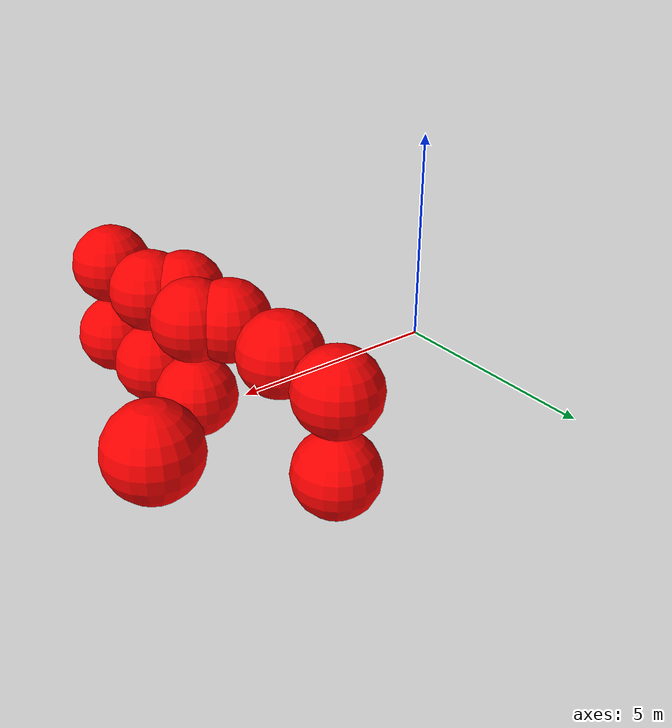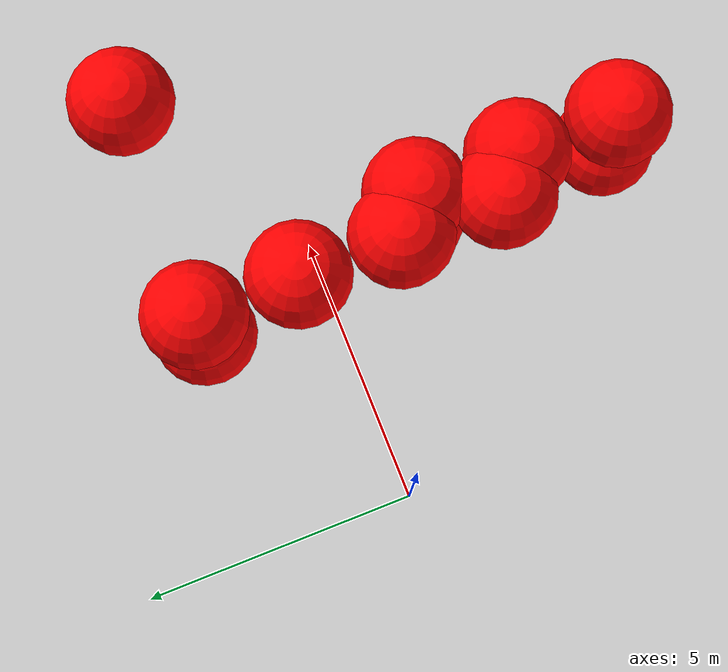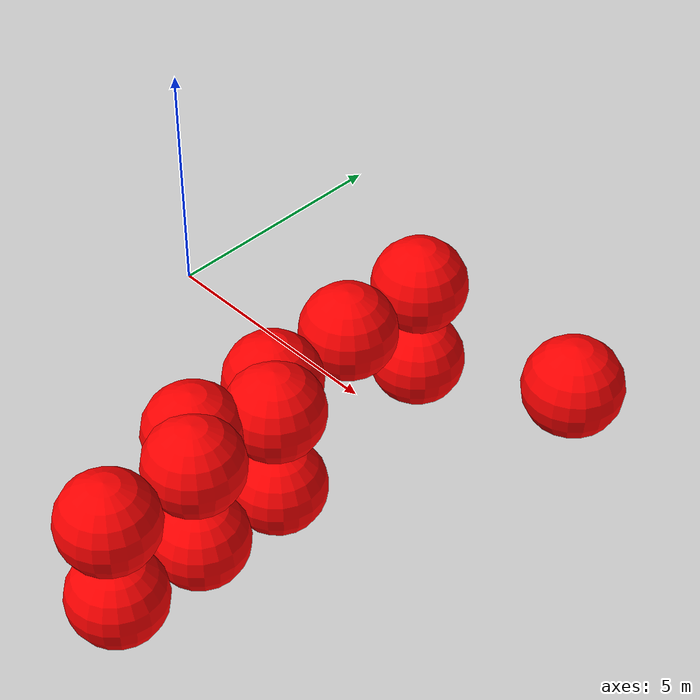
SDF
<sdf version="1.8">
 <world name="3d_world">
  <model name="obstacle_1" canonical_link="obstacle">
   <static>true</static>
   <pose relative_to="world">5.01 -6.12 -1.00 0 0 0</pose>
   <link name="obstacle">
    <pose relative_to="__model__">0.0 0 0.0 0 0 0</pose>
    <visual name="visual">
     <geometry><sphere><radius>1.00</radius></sphere></geometry>
     <material>
      <ambient>1.0 0.0 0.0 1</ambient>
      <diffuse>1.0 0.0 0.0 1</diffuse>
      <specular>1.0 0.0 0.0 1</specular>
     </material>
    </visual>
    <collision name="collision"><geometry><sphere><radius>1.00</radius></sphere></geometry></collision>
    <enable_gravity>false</enable_gravity>
   </link>
   <plugin filename="ignition-gazebo-velocity-control-system" name="ignition::gazebo::systems::VelocityControl">
    <initial_linear>0.00 0.00 0.00</initial_linear>
    <initial_angular>0 0 0</initial_angular>
   </plugin>
   <plugin filename="ignition-gazebo-odometry-publisher-system" name="ignition::gazebo::systems::OdometryPublisher">
    <dimensions>3</dimensions>
   </plugin>
  </model>
  <model name="obstacle_2" canonical_link="obstacle">
   <static>true</static>
   <pose relative_to="world">5.01 -4.12 -1.00 0 0 0</pose>
   <link name="obstacle">
    <pose relative_to="__model__">0.0 0 0.0 0 0 0</pose>
    <visual name="visual">
     <geometry><sphere><radius>1.00</radius></sphere></geometry>
     <material>
      <ambient>1.0 0.0 0.0 1</ambient>
      <diffuse>1.0 0.0 0.0 1</diffuse>
      <specular>1.0 0.0 0.0 1</specular>
     </material>
    </visual>
    <collision name="collision"><geometry><sphere><radius>1.00</radius></sphere></geometry></collision>
    <enable_gravity>false</enable_gravity>
   </link>
   <plugin filename="ignition-gazebo-velocity-control-system" name="ignition::gazebo::systems::VelocityControl">
    <initial_linear>0.00 0.00 0.00</initial_linear>
    <initial_angular>0 0 0</initial_angular>
   </plugin>
   <plugin filename="ignition-gazebo-odometry-publisher-system" name="ignition::gazebo::systems::OdometryPublisher">
    <dimensions>3</dimensions>
   </plugin>
  </model>
  <model name="obstacle_3" canonical_link="obstacle">
   <static>true</static>
   <pose relative_to="world">5.01 -2.12 -1.00 0 0 0</pose>
   <link name="obstacle">
    <pose relative_to="__model__">0.0 0 0.0 0 0 0</pose>
    <visual name="visual">
     <geometry><sphere><radius>1.00</radius></sphere></geometry>
     <material>
      <ambient>1.0 0.0 0.0 1</ambient>
      <diffuse>1.0 0.0 0.0 1</diffuse>
      <specular>1.0 0.0 0.0 1</specular>
     </material>
    </visual>
    <collision name="collision"><geometry><sphere><radius>1.00</radius></sphere></geometry></collision>
    <enable_gravity>false</enable_gravity>
   </link>
   <plugin filename="ignition-gazebo-velocity-control-system" name="ignition::gazebo::systems::VelocityControl">
    <initial_linear>0.00 0.00 0.00</initial_linear>
    <initial_angular>0 0 0</initial_angular>
   </plugin>
   <plugin filename="ignition-gazebo-odometry-publisher-system" name="ignition::gazebo::systems::OdometryPublisher">
    <dimensions>3</dimensions>
   </plugin>
  </model>
  <model name="obstacle_4" canonical_link="obstacle">
   <static>true</static>
   <pose relative_to="world">5.01 -6.12 1.00 0 0 0</pose>
   <link name="obstacle">
    <pose relative_to="__model__">0.0 0 0.0 0 0 0</pose>
    <visual name="visual">
     <geometry><sphere><radius>1.00</radius></sphere></geometry>
     <material>
      <ambient>1.0 0.0 0.0 1</ambient>
      <diffuse>1.0 0.0 0.0 1</diffuse>
      <specular>1.0 0.0 0.0 1</specular>
     </material>
    </visual>
    <collision name="collision"><geometry><sphere><radius>1.00</radius></sphere></geometry></collision>
    <enable_gravity>false</enable_gravity>
   </link>
   <plugin filename="ignition-gazebo-velocity-control-system" name="ignition::gazebo::systems::VelocityControl">
    <initial_linear>0.00 0.00 0.00</initial_linear>
    <initial_angular>0 0 0</initial_angular>
   </plugin>
   <plugin filename="ignition-gazebo-odometry-publisher-system" name="ignition::gazebo::systems::OdometryPublisher">
    <dimensions>3</dimensions>
   </plugin>
  </model>
  <model name="obstacle_5" canonical_link="obstacle">
   <static>true</static>
   <pose relative_to="world">5.01 -4.12 1.00 0 0 0</pose>
   <link name="obstacle">
    <pose relative_to="__model__">0.0 0 0.0 0 0 0</pose>
    <visual name="visual">
     <geometry><sphere><radius>1.00</radius></sphere></geometry>
     <material>
      <ambient>1.0 0.0 0.0 1</ambient>
      <diffuse>1.0 0.0 0.0 1</diffuse>
      <specular>1.0 0.0 0.0 1</specular>
     </material>
    </visual>
    <collision name="collision"><geometry><sphere><radius>1.00</radius></sphere></geometry></collision>
    <enable_gravity>false</enable_gravity>
   </link>
   <plugin filename="ignition-gazebo-velocity-control-system" name="ignition::gazebo::systems::VelocityControl">
    <initial_linear>0.00 0.00 0.00</initial_linear>
    <initial_angular>0 0 0</initial_angular>
   </plugin>
   <plugin filename="ignition-gazebo-odometry-publisher-system" name="ignition::gazebo::systems::OdometryPublisher">
    <dimensions>3</dimensions>
   </plugin>
  </model>
  <model name="obstacle_6" canonical_link="obstacle">
   <static>true</static>
   <pose relative_to="world">5.01 -2.12 1.00 0 0 0</pose>
   <link name="obstacle">
    <pose relative_to="__model__">0.0 0 0.0 0 0 0</pose>
    <visual name="visual">
     <geometry><sphere><radius>1.00</radius></sphere></geometry>
     <material>
      <ambient>1.0 0.0 0.0 1</ambient>
      <diffuse>1.0 0.0 0.0 1</diffuse>
      <specular>1.0 0.0 0.0 1</specular>
     </material>
    </visual>
    <collision name="collision"><geometry><sphere><radius>1.00</radius></sphere></geometry></collision>
    <enable_gravity>false</enable_gravity>
   </link>
   <plugin filename="ignition-gazebo-velocity-control-system" name="ignition::gazebo::systems::VelocityControl">
    <initial_linear>0.00 0.00 0.00</initial_linear>
    <initial_angular>0 0 0</initial_angular>
   </plugin>
   <plugin filename="ignition-gazebo-odometry-publisher-system" name="ignition::gazebo::systems::OdometryPublisher">
    <dimensions>3</dimensions>
   </plugin>
  </model>
  <model name="obstacle_16" canonical_link="obstacle">
   <static>true</static>
   <pose relative_to="world">4.36 2.42 -1.00 0 0 0</pose>
   <link name="obstacle">
    <pose relative_to="__model__">0.0 0 0.0 0 0 0</pose>
    <visual name="visual">
     <geometry><sphere><radius>1.00</radius></sphere></geometry>
     <material>
      <ambient>1.0 0.0 0.0 1</ambient>
      <diffuse>1.0 0.0 0.0 1</diffuse>
      <specular>1.0 0.0 0.0 1</specular>
     </material>
    </visual>
    <collision name="collision"><geometry><sphere><radius>1.00</radius></sphere></geometry></collision>
    <enable_gravity>false</enable_gravity>
   </link>
   <plugin filename="ignition-gazebo-velocity-control-system" name="ignition::gazebo::systems::VelocityControl">
    <initial_linear>0.00 0.00 0.00</initial_linear>
    <initial_angular>0 0 0</initial_angular>
   </plugin>
   <plugin filename="ignition-gazebo-odometry-publisher-system" name="ignition::gazebo::systems::OdometryPublisher">
    <dimensions>3</dimensions>
   </plugin>
  </model>
  <model name="obstacle_17" canonical_link="obstacle">
   <static>true</static>
   <pose relative_to="world">4.36 -3.58 1.00 0 0 0</pose>
   <link name="obstacle">
    <pose relative_to="__model__">0.0 0 0.0 0 0 0</pose>
    <visual name="visual">
     <geometry><sphere><radius>1.00</radius></sphere></geometry>
     <material>
      <ambient>1.0 0.0 0.0 1</ambient>
      <diffuse>1.0 0.0 0.0 1</diffuse>
      <specular>1.0 0.0 0.0 1</specular>
     </material>
    </visual>
    <collision name="collision"><geometry><sphere><radius>1.00</radius></sphere></geometry></collision>
    <enable_gravity>false</enable_gravity>
   </link>
   <plugin filename="ignition-gazebo-velocity-control-system" name="ignition::gazebo::systems::VelocityControl">
    <initial_linear>0.00 0.00 0.00</initial_linear>
    <initial_angular>0 0 0</initial_angular>
   </plugin>
   <plugin filename="ignition-gazebo-odometry-publisher-system" name="ignition::gazebo::systems::OdometryPublisher">
    <dimensions>3</dimensions>
   </plugin>
  </model>
  <model name="obstacle_18" canonical_link="obstacle">
   <static>true</static>
   <pose relative_to="world">4.36 -1.58 1.00 0 0 0</pose>
   <link name="obstacle">
    <pose relative_to="__model__">0.0 0 0.0 0 0 0</pose>
    <visual name="visual">
     <geometry><sphere><radius>1.00</radius></sphere></geometry>
     <material>
      <ambient>1.0 0.0 0.0 1</ambient>
      <diffuse>1.0 0.0 0.0 1</diffuse>
      <specular>1.0 0.0 0.0 1</specular>
     </material>
    </visual>
    <collision name="collision"><geometry><sphere><radius>1.00</radius></sphere></geometry></collision>
    <enable_gravity>false</enable_gravity>
   </link>
   <plugin filename="ignition-gazebo-velocity-control-system" name="ignition::gazebo::systems::VelocityControl">
    <initial_linear>0.00 0.00 0.00</initial_linear>
    <initial_angular>0 0 0</initial_angular>
   </plugin>
   <plugin filename="ignition-gazebo-odometry-publisher-system" name="ignition::gazebo::systems::OdometryPublisher">
    <dimensions>3</dimensions>
   </plugin>
  </model>
  <model name="obstacle_19" canonical_link="obstacle">
   <static>true</static>
   <pose relative_to="world">4.36 0.42 1.00 0 0 0</pose>
   <link name="obstacle">
    <pose relative_to="__model__">0.0 0 0.0 0 0 0</pose>
    <visual name="visual">
     <geometry><sphere><radius>1.00</radius></sphere></geometry>
     <material>
      <ambient>1.0 0.0 0.0 1</ambient>
      <diffuse>1.0 0.0 0.0 1</diffuse>
      <specular>1.0 0.0 0.0 1</specular>
     </material>
    </visual>
    <collision name="collision"><geometry><sphere><radius>1.00</radius></sphere></geometry></collision>
    <enable_gravity>false</enable_gravity>
   </link>
   <plugin filename="ignition-gazebo-velocity-control-system" name="ignition::gazebo::systems::VelocityControl">
    <initial_linear>0.00 0.00 0.00</initial_linear>
    <initial_angular>0 0 0</initial_angular>
   </plugin>
   <plugin filename="ignition-gazebo-odometry-publisher-system" name="ignition::gazebo::systems::OdometryPublisher">
    <dimensions>3</dimensions>
   </plugin>
  </model>
  <model name="obstacle_20" canonical_link="obstacle">
   <static>true</static>
   <pose relative_to="world">4.36 2.42 1.00 0 0 0</pose>
   <link name="obstacle">
    <pose relative_to="__model__">0.0 0 0.0 0 0 0</pose>
    <visual name="visual">
     <geometry><sphere><radius>1.00</radius></sphere></geometry>
     <material>
      <ambient>1.0 0.0 0.0 1</ambient>
      <diffuse>1.0 0.0 0.0 1</diffuse>
      <specular>1.0 0.0 0.0 1</specular>
     </material>
    </visual>
    <collision name="collision"><geometry><sphere><radius>1.00</radius></sphere></geometry></collision>
    <enable_gravity>false</enable_gravity>
   </link>
   <plugin filename="ignition-gazebo-velocity-control-system" name="ignition::gazebo::systems::VelocityControl">
    <initial_linear>0.00 0.00 0.00</initial_linear>
    <initial_angular>0 0 0</initial_angular>
   </plugin>
   <plugin filename="ignition-gazebo-odometry-publisher-system" name="ignition::gazebo::systems::OdometryPublisher">
    <dimensions>3</dimensions>
   </plugin>
  </model>
  <model name="obstacle_21" canonical_link="obstacle">
   <static>false</static>
   <pose relative_to="world">8.54 2.27 1.14 0 0 0</pose>
   <link name="obstacle">
    <pose relative_to="__model__">0.0 0 0.0 0 0 0</pose>
    <visual name="visual">
     <geometry><sphere><radius>1.00</radius></sphere></geometry>
     <material>
      <ambient>1.0 0.0 0.0 1</ambient>
      <diffuse>1.0 0.0 0.0 1</diffuse>
      <specular>1.0 0.0 0.0 1</specular>
     </material>
    </visual>
    <collision name="collision"><geometry><sphere><radius>1.00</radius></sphere></geometry></collision>
    <enable_gravity>false</enable_gravity>
   </link>
   <plugin filename="ignition-gazebo-velocity-control-system" name="ignition::gazebo::systems::VelocityControl">
    <initial_linear>0.00 -0.74 -0.34</initial_linear>
    <initial_angular>0 0 0</initial_angular>
   </plugin>
   <plugin filename="ignition-gazebo-odometry-publisher-system" name="ignition::gazebo::systems::OdometryPublisher">
    <dimensions>3</dimensions>
   </plugin>
  </model>
 </world>
</sdf>
